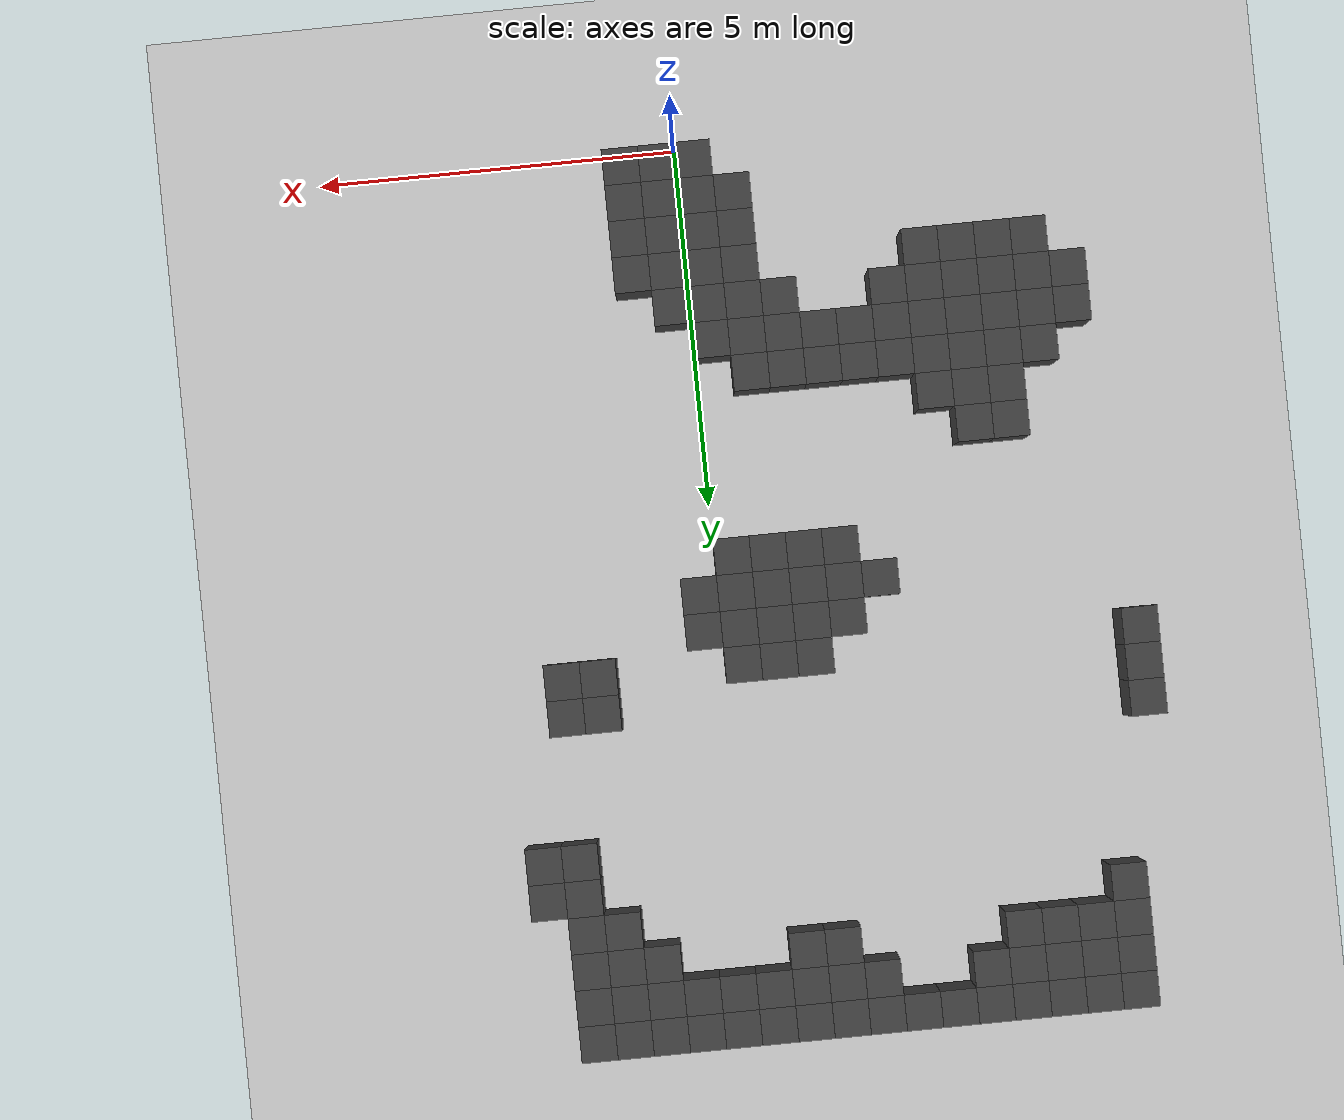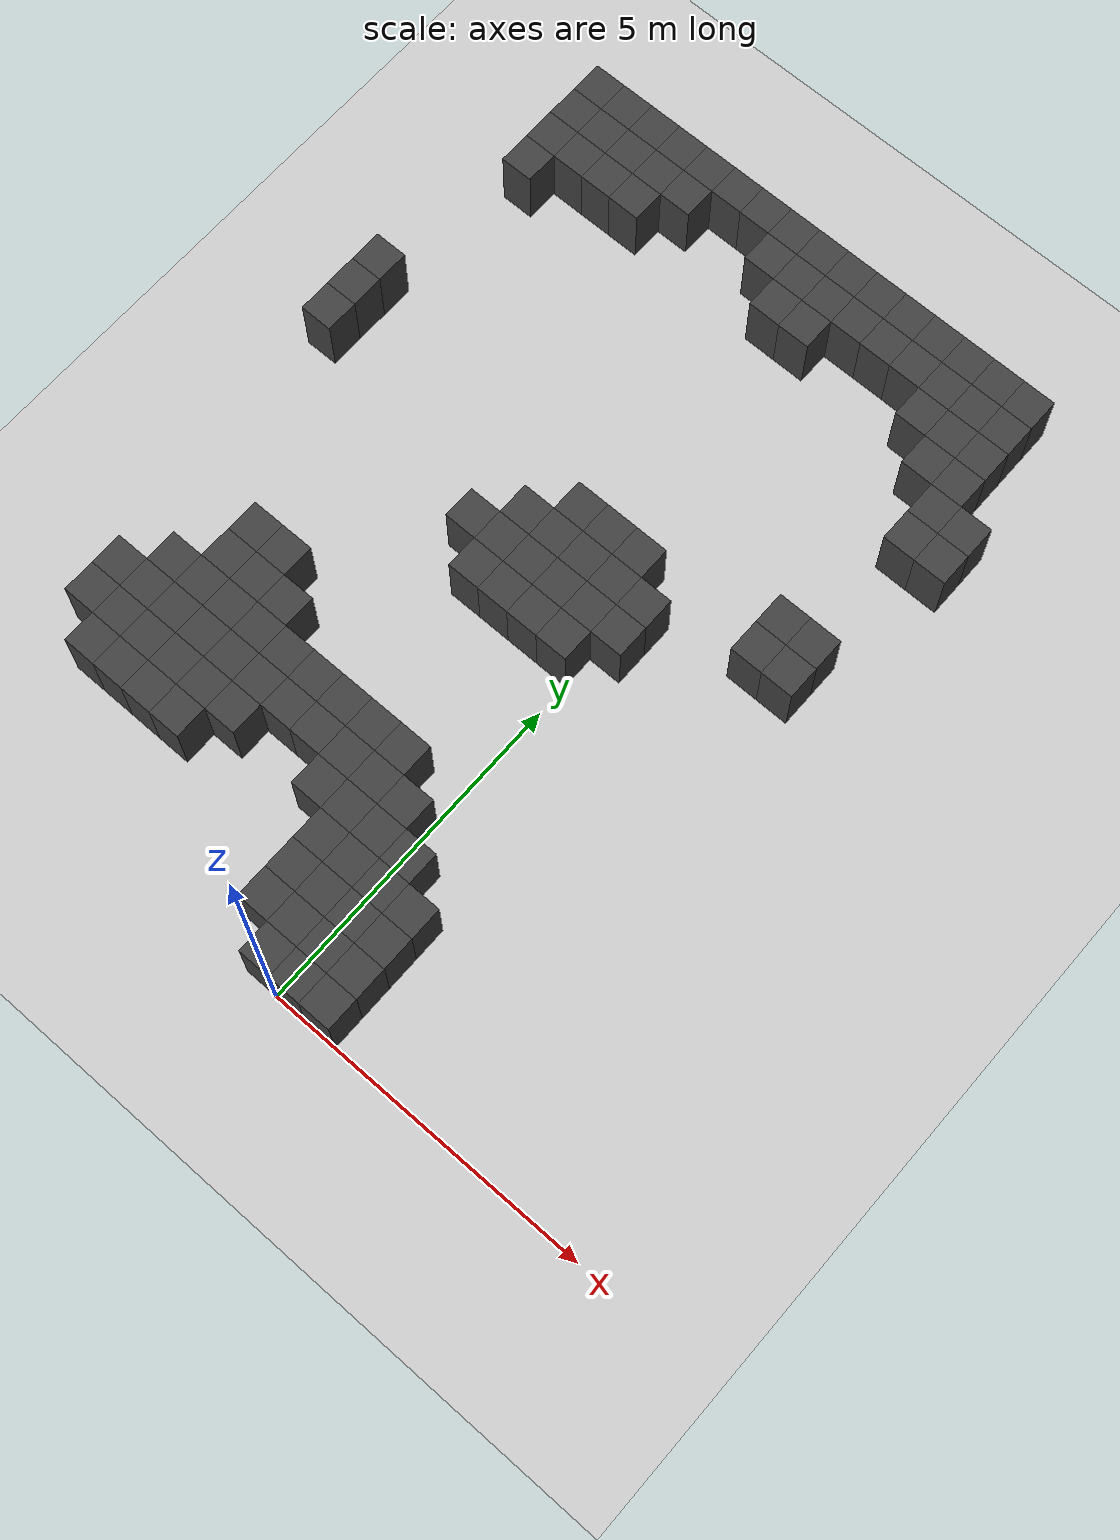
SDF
<sdf version="1.7">
 <world name="map_9082">
  <model name="ground_plane">
   <static>true</static>
   <link name="link">
    <collision name="collision">
     <geometry><plane><normal>0 0 1</normal><size>200 200</size></plane></geometry>
    </collision>
    <visual name="visual">
     <geometry><plane><normal>0 0 1</normal><size>200 200</size></plane></geometry>
     <material><ambient>0.8 0.8 0.8 1</ambient><diffuse>0.8 0.8 0.8 1</diffuse></material>
    </visual>
   </link>
  </model>
  <model name="maze_environment">
   <static>true</static>
   <link name="wall_14">
    <pose>-5.250 12.250 0.500 0 0 0</pose>
    <collision name="col"><geometry><box><size>0.5 0.5 1.0</size></box></geometry></collision>
    <visual name="vis">
     <geometry><box><size>0.5 0.5 1.0</size></box></geometry>
     <material><ambient>0.15 0.15 0.15 1</ambient><diffuse>0.25 0.25 0.25 1</diffuse></material>
    </visual>
   </link>
   <link name="wall_15">
    <pose>-4.750 12.250 0.500 0 0 0</pose>
    <collision name="col"><geometry><box><size>0.5 0.5 1.0</size></box></geometry></collision>
    <visual name="vis">
     <geometry><box><size>0.5 0.5 1.0</size></box></geometry>
     <material><ambient>0.15 0.15 0.15 1</ambient><diffuse>0.25 0.25 0.25 1</diffuse></material>
    </visual>
   </link>
   <link name="wall_16">
    <pose>-4.250 12.250 0.500 0 0 0</pose>
    <collision name="col"><geometry><box><size>0.5 0.5 1.0</size></box></geometry></collision>
    <visual name="vis">
     <geometry><box><size>0.5 0.5 1.0</size></box></geometry>
     <material><ambient>0.15 0.15 0.15 1</ambient><diffuse>0.25 0.25 0.25 1</diffuse></material>
    </visual>
   </link>
   <link name="wall_17">
    <pose>-3.750 12.250 0.500 0 0 0</pose>
    <collision name="col"><geometry><box><size>0.5 0.5 1.0</size></box></geometry></collision>
    <visual name="vis">
     <geometry><box><size>0.5 0.5 1.0</size></box></geometry>
     <material><ambient>0.15 0.15 0.15 1</ambient><diffuse>0.25 0.25 0.25 1</diffuse></material>
    </visual>
   </link>
   <link name="wall_18">
    <pose>-3.250 12.250 0.500 0 0 0</pose>
    <collision name="col"><geometry><box><size>0.5 0.5 1.0</size></box></geometry></collision>
    <visual name="vis">
     <geometry><box><size>0.5 0.5 1.0</size></box></geometry>
     <material><ambient>0.15 0.15 0.15 1</ambient><diffuse>0.25 0.25 0.25 1</diffuse></material>
    </visual>
   </link>
   <link name="wall_19">
    <pose>-2.750 12.250 0.500 0 0 0</pose>
    <collision name="col"><geometry><box><size>0.5 0.5 1.0</size></box></geometry></collision>
    <visual name="vis">
     <geometry><box><size>0.5 0.5 1.0</size></box></geometry>
     <material><ambient>0.15 0.15 0.15 1</ambient><diffuse>0.25 0.25 0.25 1</diffuse></material>
    </visual>
   </link>
   <link name="wall_20">
    <pose>-2.250 12.250 0.500 0 0 0</pose>
    <collision name="col"><geometry><box><size>0.5 0.5 1.0</size></box></geometry></collision>
    <visual name="vis">
     <geometry><box><size>0.5 0.5 1.0</size></box></geometry>
     <material><ambient>0.15 0.15 0.15 1</ambient><diffuse>0.25 0.25 0.25 1</diffuse></material>
    </visual>
   </link>
   <link name="wall_21">
    <pose>-1.750 12.250 0.500 0 0 0</pose>
    <collision name="col"><geometry><box><size>0.5 0.5 1.0</size></box></geometry></collision>
    <visual name="vis">
     <geometry><box><size>0.5 0.5 1.0</size></box></geometry>
     <material><ambient>0.15 0.15 0.15 1</ambient><diffuse>0.25 0.25 0.25 1</diffuse></material>
    </visual>
   </link>
   <link name="wall_22">
    <pose>-1.250 12.250 0.500 0 0 0</pose>
    <collision name="col"><geometry><box><size>0.5 0.5 1.0</size></box></geometry></collision>
    <visual name="vis">
     <geometry><box><size>0.5 0.5 1.0</size></box></geometry>
     <material><ambient>0.15 0.15 0.15 1</ambient><diffuse>0.25 0.25 0.25 1</diffuse></material>
    </visual>
   </link>
   <link name="wall_23">
    <pose>-0.750 12.250 0.500 0 0 0</pose>
    <collision name="col"><geometry><box><size>0.5 0.5 1.0</size></box></geometry></collision>
    <visual name="vis">
     <geometry><box><size>0.5 0.5 1.0</size></box></geometry>
     <material><ambient>0.15 0.15 0.15 1</ambient><diffuse>0.25 0.25 0.25 1</diffuse></material>
    </visual>
   </link>
   <link name="wall_24">
    <pose>-0.250 12.250 0.500 0 0 0</pose>
    <collision name="col"><geometry><box><size>0.5 0.5 1.0</size></box></geometry></collision>
    <visual name="vis">
     <geometry><box><size>0.5 0.5 1.0</size></box></geometry>
     <material><ambient>0.15 0.15 0.15 1</ambient><diffuse>0.25 0.25 0.25 1</diffuse></material>
    </visual>
   </link>
   <link name="wall_25">
    <pose>0.250 12.250 0.500 0 0 0</pose>
    <collision name="col"><geometry><box><size>0.5 0.5 1.0</size></box></geometry></collision>
    <visual name="vis">
     <geometry><box><size>0.5 0.5 1.0</size></box></geometry>
     <material><ambient>0.15 0.15 0.15 1</ambient><diffuse>0.25 0.25 0.25 1</diffuse></material>
    </visual>
   </link>
   <link name="wall_26">
    <pose>0.750 12.250 0.500 0 0 0</pose>
    <collision name="col"><geometry><box><size>0.5 0.5 1.0</size></box></geometry></collision>
    <visual name="vis">
     <geometry><box><size>0.5 0.5 1.0</size></box></geometry>
     <material><ambient>0.15 0.15 0.15 1</ambient><diffuse>0.25 0.25 0.25 1</diffuse></material>
    </visual>
   </link>
   <link name="wall_27">
    <pose>1.250 12.250 0.500 0 0 0</pose>
    <collision name="col"><geometry><box><size>0.5 0.5 1.0</size></box></geometry></collision>
    <visual name="vis">
     <geometry><box><size>0.5 0.5 1.0</size></box></geometry>
     <material><ambient>0.15 0.15 0.15 1</ambient><diffuse>0.25 0.25 0.25 1</diffuse></material>
    </visual>
   </link>
   <link name="wall_28">
    <pose>1.750 12.250 0.500 0 0 0</pose>
    <collision name="col"><geometry><box><size>0.5 0.5 1.0</size></box></geometry></collision>
    <visual name="vis">
     <geometry><box><size>0.5 0.5 1.0</size></box></geometry>
     <material><ambient>0.15 0.15 0.15 1</ambient><diffuse>0.25 0.25 0.25 1</diffuse></material>
    </visual>
   </link>
   <link name="wall_29">
    <pose>2.250 12.250 0.500 0 0 0</pose>
    <collision name="col"><geometry><box><size>0.5 0.5 1.0</size></box></geometry></collision>
    <visual name="vis">
     <geometry><box><size>0.5 0.5 1.0</size></box></geometry>
     <material><ambient>0.15 0.15 0.15 1</ambient><diffuse>0.25 0.25 0.25 1</diffuse></material>
    </visual>
   </link>
   <link name="wall_63">
    <pose>-5.250 11.750 0.500 0 0 0</pose>
    <collision name="col"><geometry><box><size>0.5 0.5 1.0</size></box></geometry></collision>
    <visual name="vis">
     <geometry><box><size>0.5 0.5 1.0</size></box></geometry>
     <material><ambient>0.15 0.15 0.15 1</ambient><diffuse>0.25 0.25 0.25 1</diffuse></material>
    </visual>
   </link>
   <link name="wall_64">
    <pose>-4.750 11.750 0.500 0 0 0</pose>
    <collision name="col"><geometry><box><size>0.5 0.5 1.0</size></box></geometry></collision>
    <visual name="vis">
     <geometry><box><size>0.5 0.5 1.0</size></box></geometry>
     <material><ambient>0.15 0.15 0.15 1</ambient><diffuse>0.25 0.25 0.25 1</diffuse></material>
    </visual>
   </link>
   <link name="wall_65">
    <pose>-4.250 11.750 0.500 0 0 0</pose>
    <collision name="col"><geometry><box><size>0.5 0.5 1.0</size></box></geometry></collision>
    <visual name="vis">
     <geometry><box><size>0.5 0.5 1.0</size></box></geometry>
     <material><ambient>0.15 0.15 0.15 1</ambient><diffuse>0.25 0.25 0.25 1</diffuse></material>
    </visual>
   </link>
   <link name="wall_66">
    <pose>-3.750 11.750 0.500 0 0 0</pose>
    <collision name="col"><geometry><box><size>0.5 0.5 1.0</size></box></geometry></collision>
    <visual name="vis">
     <geometry><box><size>0.5 0.5 1.0</size></box></geometry>
     <material><ambient>0.15 0.15 0.15 1</ambient><diffuse>0.25 0.25 0.25 1</diffuse></material>
    </visual>
   </link>
   <link name="wall_67">
    <pose>-3.250 11.750 0.500 0 0 0</pose>
    <collision name="col"><geometry><box><size>0.5 0.5 1.0</size></box></geometry></collision>
    <visual name="vis">
     <geometry><box><size>0.5 0.5 1.0</size></box></geometry>
     <material><ambient>0.15 0.15 0.15 1</ambient><diffuse>0.25 0.25 0.25 1</diffuse></material>
    </visual>
   </link>
   <link name="wall_68">
    <pose>-1.750 11.750 0.500 0 0 0</pose>
    <collision name="col"><geometry><box><size>0.5 0.5 1.0</size></box></geometry></collision>
    <visual name="vis">
     <geometry><box><size>0.5 0.5 1.0</size></box></geometry>
     <material><ambient>0.15 0.15 0.15 1</ambient><diffuse>0.25 0.25 0.25 1</diffuse></material>
    </visual>
   </link>
   <link name="wall_69">
    <pose>-1.250 11.750 0.500 0 0 0</pose>
    <collision name="col"><geometry><box><size>0.5 0.5 1.0</size></box></geometry></collision>
    <visual name="vis">
     <geometry><box><size>0.5 0.5 1.0</size></box></geometry>
     <material><ambient>0.15 0.15 0.15 1</ambient><diffuse>0.25 0.25 0.25 1</diffuse></material>
    </visual>
   </link>
   <link name="wall_70">
    <pose>-0.750 11.750 0.500 0 0 0</pose>
    <collision name="col"><geometry><box><size>0.5 0.5 1.0</size></box></geometry></collision>
    <visual name="vis">
     <geometry><box><size>0.5 0.5 1.0</size></box></geometry>
     <material><ambient>0.15 0.15 0.15 1</ambient><diffuse>0.25 0.25 0.25 1</diffuse></material>
    </visual>
   </link>
   <link name="wall_71">
    <pose>-0.250 11.750 0.500 0 0 0</pose>
    <collision name="col"><geometry><box><size>0.5 0.5 1.0</size></box></geometry></collision>
    <visual name="vis">
     <geometry><box><size>0.5 0.5 1.0</size></box></geometry>
     <material><ambient>0.15 0.15 0.15 1</ambient><diffuse>0.25 0.25 0.25 1</diffuse></material>
    </visual>
   </link>
   <link name="wall_72">
    <pose>0.250 11.750 0.500 0 0 0</pose>
    <collision name="col"><geometry><box><size>0.5 0.5 1.0</size></box></geometry></collision>
    <visual name="vis">
     <geometry><box><size>0.5 0.5 1.0</size></box></geometry>
     <material><ambient>0.15 0.15 0.15 1</ambient><diffuse>0.25 0.25 0.25 1</diffuse></material>
    </visual>
   </link>
   <link name="wall_73">
    <pose>0.750 11.750 0.500 0 0 0</pose>
    <collision name="col"><geometry><box><size>0.5 0.5 1.0</size></box></geometry></collision>
    <visual name="vis">
     <geometry><box><size>0.5 0.5 1.0</size></box></geometry>
     <material><ambient>0.15 0.15 0.15 1</ambient><diffuse>0.25 0.25 0.25 1</diffuse></material>
    </visual>
   </link>
   <link name="wall_74">
    <pose>1.250 11.750 0.500 0 0 0</pose>
    <collision name="col"><geometry><box><size>0.5 0.5 1.0</size></box></geometry></collision>
    <visual name="vis">
     <geometry><box><size>0.5 0.5 1.0</size></box></geometry>
     <material><ambient>0.15 0.15 0.15 1</ambient><diffuse>0.25 0.25 0.25 1</diffuse></material>
    </visual>
   </link>
   <link name="wall_75">
    <pose>1.750 11.750 0.500 0 0 0</pose>
    <collision name="col"><geometry><box><size>0.5 0.5 1.0</size></box></geometry></collision>
    <visual name="vis">
     <geometry><box><size>0.5 0.5 1.0</size></box></geometry>
     <material><ambient>0.15 0.15 0.15 1</ambient><diffuse>0.25 0.25 0.25 1</diffuse></material>
    </visual>
   </link>
   <link name="wall_76">
    <pose>2.250 11.750 0.500 0 0 0</pose>
    <collision name="col"><geometry><box><size>0.5 0.5 1.0</size></box></geometry></collision>
    <visual name="vis">
     <geometry><box><size>0.5 0.5 1.0</size></box></geometry>
     <material><ambient>0.15 0.15 0.15 1</ambient><diffuse>0.25 0.25 0.25 1</diffuse></material>
    </visual>
   </link>
   <link name="wall_109">
    <pose>-5.250 11.250 0.500 0 0 0</pose>
    <collision name="col"><geometry><box><size>0.5 0.5 1.0</size></box></geometry></collision>
    <visual name="vis">
     <geometry><box><size>0.5 0.5 1.0</size></box></geometry>
     <material><ambient>0.15 0.15 0.15 1</ambient><diffuse>0.25 0.25 0.25 1</diffuse></material>
    </visual>
   </link>
   <link name="wall_110">
    <pose>-4.750 11.250 0.500 0 0 0</pose>
    <collision name="col"><geometry><box><size>0.5 0.5 1.0</size></box></geometry></collision>
    <visual name="vis">
     <geometry><box><size>0.5 0.5 1.0</size></box></geometry>
     <material><ambient>0.15 0.15 0.15 1</ambient><diffuse>0.25 0.25 0.25 1</diffuse></material>
    </visual>
   </link>
   <link name="wall_111">
    <pose>-4.250 11.250 0.500 0 0 0</pose>
    <collision name="col"><geometry><box><size>0.5 0.5 1.0</size></box></geometry></collision>
    <visual name="vis">
     <geometry><box><size>0.5 0.5 1.0</size></box></geometry>
     <material><ambient>0.15 0.15 0.15 1</ambient><diffuse>0.25 0.25 0.25 1</diffuse></material>
    </visual>
   </link>
   <link name="wall_112">
    <pose>-3.750 11.250 0.500 0 0 0</pose>
    <collision name="col"><geometry><box><size>0.5 0.5 1.0</size></box></geometry></collision>
    <visual name="vis">
     <geometry><box><size>0.5 0.5 1.0</size></box></geometry>
     <material><ambient>0.15 0.15 0.15 1</ambient><diffuse>0.25 0.25 0.25 1</diffuse></material>
    </visual>
   </link>
   <link name="wall_113">
    <pose>-1.250 11.250 0.500 0 0 0</pose>
    <collision name="col"><geometry><box><size>0.5 0.5 1.0</size></box></geometry></collision>
    <visual name="vis">
     <geometry><box><size>0.5 0.5 1.0</size></box></geometry>
     <material><ambient>0.15 0.15 0.15 1</ambient><diffuse>0.25 0.25 0.25 1</diffuse></material>
    </visual>
   </link>
   <link name="wall_114">
    <pose>-0.750 11.250 0.500 0 0 0</pose>
    <collision name="col"><geometry><box><size>0.5 0.5 1.0</size></box></geometry></collision>
    <visual name="vis">
     <geometry><box><size>0.5 0.5 1.0</size></box></geometry>
     <material><ambient>0.15 0.15 0.15 1</ambient><diffuse>0.25 0.25 0.25 1</diffuse></material>
    </visual>
   </link>
   <link name="wall_115">
    <pose>1.250 11.250 0.500 0 0 0</pose>
    <collision name="col"><geometry><box><size>0.5 0.5 1.0</size></box></geometry></collision>
    <visual name="vis">
     <geometry><box><size>0.5 0.5 1.0</size></box></geometry>
     <material><ambient>0.15 0.15 0.15 1</ambient><diffuse>0.25 0.25 0.25 1</diffuse></material>
    </visual>
   </link>
   <link name="wall_116">
    <pose>1.750 11.250 0.500 0 0 0</pose>
    <collision name="col"><geometry><box><size>0.5 0.5 1.0</size></box></geometry></collision>
    <visual name="vis">
     <geometry><box><size>0.5 0.5 1.0</size></box></geometry>
     <material><ambient>0.15 0.15 0.15 1</ambient><diffuse>0.25 0.25 0.25 1</diffuse></material>
    </visual>
   </link>
   <link name="wall_117">
    <pose>2.250 11.250 0.500 0 0 0</pose>
    <collision name="col"><geometry><box><size>0.5 0.5 1.0</size></box></geometry></collision>
    <visual name="vis">
     <geometry><box><size>0.5 0.5 1.0</size></box></geometry>
     <material><ambient>0.15 0.15 0.15 1</ambient><diffuse>0.25 0.25 0.25 1</diffuse></material>
    </visual>
   </link>
   <link name="wall_142">
    <pose>-5.250 10.750 0.500 0 0 0</pose>
    <collision name="col"><geometry><box><size>0.5 0.5 1.0</size></box></geometry></collision>
    <visual name="vis">
     <geometry><box><size>0.5 0.5 1.0</size></box></geometry>
     <material><ambient>0.15 0.15 0.15 1</ambient><diffuse>0.25 0.25 0.25 1</diffuse></material>
    </visual>
   </link>
   <link name="wall_143">
    <pose>1.750 10.750 0.500 0 0 0</pose>
    <collision name="col"><geometry><box><size>0.5 0.5 1.0</size></box></geometry></collision>
    <visual name="vis">
     <geometry><box><size>0.5 0.5 1.0</size></box></geometry>
     <material><ambient>0.15 0.15 0.15 1</ambient><diffuse>0.25 0.25 0.25 1</diffuse></material>
    </visual>
   </link>
   <link name="wall_144">
    <pose>2.250 10.750 0.500 0 0 0</pose>
    <collision name="col"><geometry><box><size>0.5 0.5 1.0</size></box></geometry></collision>
    <visual name="vis">
     <geometry><box><size>0.5 0.5 1.0</size></box></geometry>
     <material><ambient>0.15 0.15 0.15 1</ambient><diffuse>0.25 0.25 0.25 1</diffuse></material>
    </visual>
   </link>
   <link name="wall_165">
    <pose>2.250 10.250 0.500 0 0 0</pose>
    <collision name="col"><geometry><box><size>0.5 0.5 1.0</size></box></geometry></collision>
    <visual name="vis">
     <geometry><box><size>0.5 0.5 1.0</size></box></geometry>
     <material><ambient>0.15 0.15 0.15 1</ambient><diffuse>0.25 0.25 0.25 1</diffuse></material>
    </visual>
   </link>
   <link name="wall_166">
    <pose>2.750 10.250 0.500 0 0 0</pose>
    <collision name="col"><geometry><box><size>0.5 0.5 1.0</size></box></geometry></collision>
    <visual name="vis">
     <geometry><box><size>0.5 0.5 1.0</size></box></geometry>
     <material><ambient>0.15 0.15 0.15 1</ambient><diffuse>0.25 0.25 0.25 1</diffuse></material>
    </visual>
   </link>
   <link name="wall_184">
    <pose>2.250 9.750 0.500 0 0 0</pose>
    <collision name="col"><geometry><box><size>0.5 0.5 1.0</size></box></geometry></collision>
    <visual name="vis">
     <geometry><box><size>0.5 0.5 1.0</size></box></geometry>
     <material><ambient>0.15 0.15 0.15 1</ambient><diffuse>0.25 0.25 0.25 1</diffuse></material>
    </visual>
   </link>
   <link name="wall_185">
    <pose>2.750 9.750 0.500 0 0 0</pose>
    <collision name="col"><geometry><box><size>0.5 0.5 1.0</size></box></geometry></collision>
    <visual name="vis">
     <geometry><box><size>0.5 0.5 1.0</size></box></geometry>
     <material><ambient>0.15 0.15 0.15 1</ambient><diffuse>0.25 0.25 0.25 1</diffuse></material>
    </visual>
   </link>
   <link name="wall_225">
    <pose>-5.750 8.250 0.500 0 0 0</pose>
    <collision name="col"><geometry><box><size>0.5 0.5 1.0</size></box></geometry></collision>
    <visual name="vis">
     <geometry><box><size>0.5 0.5 1.0</size></box></geometry>
     <material><ambient>0.15 0.15 0.15 1</ambient><diffuse>0.25 0.25 0.25 1</diffuse></material>
    </visual>
   </link>
   <link name="wall_238">
    <pose>-5.750 7.750 0.500 0 0 0</pose>
    <collision name="col"><geometry><box><size>0.5 0.5 1.0</size></box></geometry></collision>
    <visual name="vis">
     <geometry><box><size>0.5 0.5 1.0</size></box></geometry>
     <material><ambient>0.15 0.15 0.15 1</ambient><diffuse>0.25 0.25 0.25 1</diffuse></material>
    </visual>
   </link>
   <link name="wall_239">
    <pose>1.750 7.750 0.500 0 0 0</pose>
    <collision name="col"><geometry><box><size>0.5 0.5 1.0</size></box></geometry></collision>
    <visual name="vis">
     <geometry><box><size>0.5 0.5 1.0</size></box></geometry>
     <material><ambient>0.15 0.15 0.15 1</ambient><diffuse>0.25 0.25 0.25 1</diffuse></material>
    </visual>
   </link>
   <link name="wall_240">
    <pose>2.250 7.750 0.500 0 0 0</pose>
    <collision name="col"><geometry><box><size>0.5 0.5 1.0</size></box></geometry></collision>
    <visual name="vis">
     <geometry><box><size>0.5 0.5 1.0</size></box></geometry>
     <material><ambient>0.15 0.15 0.15 1</ambient><diffuse>0.25 0.25 0.25 1</diffuse></material>
    </visual>
   </link>
   <link name="wall_255">
    <pose>-5.750 7.250 0.500 0 0 0</pose>
    <collision name="col"><geometry><box><size>0.5 0.5 1.0</size></box></geometry></collision>
    <visual name="vis">
     <geometry><box><size>0.5 0.5 1.0</size></box></geometry>
     <material><ambient>0.15 0.15 0.15 1</ambient><diffuse>0.25 0.25 0.25 1</diffuse></material>
    </visual>
   </link>
   <link name="wall_256">
    <pose>-1.250 7.250 0.500 0 0 0</pose>
    <collision name="col"><geometry><box><size>0.5 0.5 1.0</size></box></geometry></collision>
    <visual name="vis">
     <geometry><box><size>0.5 0.5 1.0</size></box></geometry>
     <material><ambient>0.15 0.15 0.15 1</ambient><diffuse>0.25 0.25 0.25 1</diffuse></material>
    </visual>
   </link>
   <link name="wall_257">
    <pose>-0.750 7.250 0.500 0 0 0</pose>
    <collision name="col"><geometry><box><size>0.5 0.5 1.0</size></box></geometry></collision>
    <visual name="vis">
     <geometry><box><size>0.5 0.5 1.0</size></box></geometry>
     <material><ambient>0.15 0.15 0.15 1</ambient><diffuse>0.25 0.25 0.25 1</diffuse></material>
    </visual>
   </link>
   <link name="wall_258">
    <pose>-0.250 7.250 0.500 0 0 0</pose>
    <collision name="col"><geometry><box><size>0.5 0.5 1.0</size></box></geometry></collision>
    <visual name="vis">
     <geometry><box><size>0.5 0.5 1.0</size></box></geometry>
     <material><ambient>0.15 0.15 0.15 1</ambient><diffuse>0.25 0.25 0.25 1</diffuse></material>
    </visual>
   </link>
   <link name="wall_259">
    <pose>1.750 7.250 0.500 0 0 0</pose>
    <collision name="col"><geometry><box><size>0.5 0.5 1.0</size></box></geometry></collision>
    <visual name="vis">
     <geometry><box><size>0.5 0.5 1.0</size></box></geometry>
     <material><ambient>0.15 0.15 0.15 1</ambient><diffuse>0.25 0.25 0.25 1</diffuse></material>
    </visual>
   </link>
   <link name="wall_260">
    <pose>2.250 7.250 0.500 0 0 0</pose>
    <collision name="col"><geometry><box><size>0.5 0.5 1.0</size></box></geometry></collision>
    <visual name="vis">
     <geometry><box><size>0.5 0.5 1.0</size></box></geometry>
     <material><ambient>0.15 0.15 0.15 1</ambient><diffuse>0.25 0.25 0.25 1</diffuse></material>
    </visual>
   </link>
   <link name="wall_273">
    <pose>-1.750 6.750 0.500 0 0 0</pose>
    <collision name="col"><geometry><box><size>0.5 0.5 1.0</size></box></geometry></collision>
    <visual name="vis">
     <geometry><box><size>0.5 0.5 1.0</size></box></geometry>
     <material><ambient>0.15 0.15 0.15 1</ambient><diffuse>0.25 0.25 0.25 1</diffuse></material>
    </visual>
   </link>
   <link name="wall_274">
    <pose>-1.250 6.750 0.500 0 0 0</pose>
    <collision name="col"><geometry><box><size>0.5 0.5 1.0</size></box></geometry></collision>
    <visual name="vis">
     <geometry><box><size>0.5 0.5 1.0</size></box></geometry>
     <material><ambient>0.15 0.15 0.15 1</ambient><diffuse>0.25 0.25 0.25 1</diffuse></material>
    </visual>
   </link>
   <link name="wall_275">
    <pose>-0.750 6.750 0.500 0 0 0</pose>
    <collision name="col"><geometry><box><size>0.5 0.5 1.0</size></box></geometry></collision>
    <visual name="vis">
     <geometry><box><size>0.5 0.5 1.0</size></box></geometry>
     <material><ambient>0.15 0.15 0.15 1</ambient><diffuse>0.25 0.25 0.25 1</diffuse></material>
    </visual>
   </link>
   <link name="wall_276">
    <pose>-0.250 6.750 0.500 0 0 0</pose>
    <collision name="col"><geometry><box><size>0.5 0.5 1.0</size></box></geometry></collision>
    <visual name="vis">
     <geometry><box><size>0.5 0.5 1.0</size></box></geometry>
     <material><ambient>0.15 0.15 0.15 1</ambient><diffuse>0.25 0.25 0.25 1</diffuse></material>
    </visual>
   </link>
   <link name="wall_277">
    <pose>0.250 6.750 0.500 0 0 0</pose>
    <collision name="col"><geometry><box><size>0.5 0.5 1.0</size></box></geometry></collision>
    <visual name="vis">
     <geometry><box><size>0.5 0.5 1.0</size></box></geometry>
     <material><ambient>0.15 0.15 0.15 1</ambient><diffuse>0.25 0.25 0.25 1</diffuse></material>
    </visual>
   </link>
   <link name="wall_289">
    <pose>-2.250 6.250 0.500 0 0 0</pose>
    <collision name="col"><geometry><box><size>0.5 0.5 1.0</size></box></geometry></collision>
    <visual name="vis">
     <geometry><box><size>0.5 0.5 1.0</size></box></geometry>
     <material><ambient>0.15 0.15 0.15 1</ambient><diffuse>0.25 0.25 0.25 1</diffuse></material>
    </visual>
   </link>
   <link name="wall_290">
    <pose>-1.750 6.250 0.500 0 0 0</pose>
    <collision name="col"><geometry><box><size>0.5 0.5 1.0</size></box></geometry></collision>
    <visual name="vis">
     <geometry><box><size>0.5 0.5 1.0</size></box></geometry>
     <material><ambient>0.15 0.15 0.15 1</ambient><diffuse>0.25 0.25 0.25 1</diffuse></material>
    </visual>
   </link>
   <link name="wall_291">
    <pose>-1.250 6.250 0.500 0 0 0</pose>
    <collision name="col"><geometry><box><size>0.5 0.5 1.0</size></box></geometry></collision>
    <visual name="vis">
     <geometry><box><size>0.5 0.5 1.0</size></box></geometry>
     <material><ambient>0.15 0.15 0.15 1</ambient><diffuse>0.25 0.25 0.25 1</diffuse></material>
    </visual>
   </link>
   <link name="wall_292">
    <pose>-0.750 6.250 0.500 0 0 0</pose>
    <collision name="col"><geometry><box><size>0.5 0.5 1.0</size></box></geometry></collision>
    <visual name="vis">
     <geometry><box><size>0.5 0.5 1.0</size></box></geometry>
     <material><ambient>0.15 0.15 0.15 1</ambient><diffuse>0.25 0.25 0.25 1</diffuse></material>
    </visual>
   </link>
   <link name="wall_293">
    <pose>-0.250 6.250 0.500 0 0 0</pose>
    <collision name="col"><geometry><box><size>0.5 0.5 1.0</size></box></geometry></collision>
    <visual name="vis">
     <geometry><box><size>0.5 0.5 1.0</size></box></geometry>
     <material><ambient>0.15 0.15 0.15 1</ambient><diffuse>0.25 0.25 0.25 1</diffuse></material>
    </visual>
   </link>
   <link name="wall_294">
    <pose>0.250 6.250 0.500 0 0 0</pose>
    <collision name="col"><geometry><box><size>0.5 0.5 1.0</size></box></geometry></collision>
    <visual name="vis">
     <geometry><box><size>0.5 0.5 1.0</size></box></geometry>
     <material><ambient>0.15 0.15 0.15 1</ambient><diffuse>0.25 0.25 0.25 1</diffuse></material>
    </visual>
   </link>
   <link name="wall_299">
    <pose>-1.750 5.750 0.500 0 0 0</pose>
    <collision name="col"><geometry><box><size>0.5 0.5 1.0</size></box></geometry></collision>
    <visual name="vis">
     <geometry><box><size>0.5 0.5 1.0</size></box></geometry>
     <material><ambient>0.15 0.15 0.15 1</ambient><diffuse>0.25 0.25 0.25 1</diffuse></material>
    </visual>
   </link>
   <link name="wall_300">
    <pose>-1.250 5.750 0.500 0 0 0</pose>
    <collision name="col"><geometry><box><size>0.5 0.5 1.0</size></box></geometry></collision>
    <visual name="vis">
     <geometry><box><size>0.5 0.5 1.0</size></box></geometry>
     <material><ambient>0.15 0.15 0.15 1</ambient><diffuse>0.25 0.25 0.25 1</diffuse></material>
    </visual>
   </link>
   <link name="wall_301">
    <pose>-0.750 5.750 0.500 0 0 0</pose>
    <collision name="col"><geometry><box><size>0.5 0.5 1.0</size></box></geometry></collision>
    <visual name="vis">
     <geometry><box><size>0.5 0.5 1.0</size></box></geometry>
     <material><ambient>0.15 0.15 0.15 1</ambient><diffuse>0.25 0.25 0.25 1</diffuse></material>
    </visual>
   </link>
   <link name="wall_302">
    <pose>-0.250 5.750 0.500 0 0 0</pose>
    <collision name="col"><geometry><box><size>0.5 0.5 1.0</size></box></geometry></collision>
    <visual name="vis">
     <geometry><box><size>0.5 0.5 1.0</size></box></geometry>
     <material><ambient>0.15 0.15 0.15 1</ambient><diffuse>0.25 0.25 0.25 1</diffuse></material>
    </visual>
   </link>
   <link name="wall_313">
    <pose>-4.250 4.250 0.500 0 0 0</pose>
    <collision name="col"><geometry><box><size>0.5 0.5 1.0</size></box></geometry></collision>
    <visual name="vis">
     <geometry><box><size>0.5 0.5 1.0</size></box></geometry>
     <material><ambient>0.15 0.15 0.15 1</ambient><diffuse>0.25 0.25 0.25 1</diffuse></material>
    </visual>
   </link>
   <link name="wall_314">
    <pose>-3.750 4.250 0.500 0 0 0</pose>
    <collision name="col"><geometry><box><size>0.5 0.5 1.0</size></box></geometry></collision>
    <visual name="vis">
     <geometry><box><size>0.5 0.5 1.0</size></box></geometry>
     <material><ambient>0.15 0.15 0.15 1</ambient><diffuse>0.25 0.25 0.25 1</diffuse></material>
    </visual>
   </link>
   <link name="wall_322">
    <pose>-4.250 3.750 0.500 0 0 0</pose>
    <collision name="col"><geometry><box><size>0.5 0.5 1.0</size></box></geometry></collision>
    <visual name="vis">
     <geometry><box><size>0.5 0.5 1.0</size></box></geometry>
     <material><ambient>0.15 0.15 0.15 1</ambient><diffuse>0.25 0.25 0.25 1</diffuse></material>
    </visual>
   </link>
   <link name="wall_323">
    <pose>-3.750 3.750 0.500 0 0 0</pose>
    <collision name="col"><geometry><box><size>0.5 0.5 1.0</size></box></geometry></collision>
    <visual name="vis">
     <geometry><box><size>0.5 0.5 1.0</size></box></geometry>
     <material><ambient>0.15 0.15 0.15 1</ambient><diffuse>0.25 0.25 0.25 1</diffuse></material>
    </visual>
   </link>
   <link name="wall_324">
    <pose>-3.250 3.750 0.500 0 0 0</pose>
    <collision name="col"><geometry><box><size>0.5 0.5 1.0</size></box></geometry></collision>
    <visual name="vis">
     <geometry><box><size>0.5 0.5 1.0</size></box></geometry>
     <material><ambient>0.15 0.15 0.15 1</ambient><diffuse>0.25 0.25 0.25 1</diffuse></material>
    </visual>
   </link>
   <link name="wall_333">
    <pose>-4.750 3.250 0.500 0 0 0</pose>
    <collision name="col"><geometry><box><size>0.5 0.5 1.0</size></box></geometry></collision>
    <visual name="vis">
     <geometry><box><size>0.5 0.5 1.0</size></box></geometry>
     <material><ambient>0.15 0.15 0.15 1</ambient><diffuse>0.25 0.25 0.25 1</diffuse></material>
    </visual>
   </link>
   <link name="wall_334">
    <pose>-4.250 3.250 0.500 0 0 0</pose>
    <collision name="col"><geometry><box><size>0.5 0.5 1.0</size></box></geometry></collision>
    <visual name="vis">
     <geometry><box><size>0.5 0.5 1.0</size></box></geometry>
     <material><ambient>0.15 0.15 0.15 1</ambient><diffuse>0.25 0.25 0.25 1</diffuse></material>
    </visual>
   </link>
   <link name="wall_335">
    <pose>-3.750 3.250 0.500 0 0 0</pose>
    <collision name="col"><geometry><box><size>0.5 0.5 1.0</size></box></geometry></collision>
    <visual name="vis">
     <geometry><box><size>0.5 0.5 1.0</size></box></geometry>
     <material><ambient>0.15 0.15 0.15 1</ambient><diffuse>0.25 0.25 0.25 1</diffuse></material>
    </visual>
   </link>
   <link name="wall_336">
    <pose>-3.250 3.250 0.500 0 0 0</pose>
    <collision name="col"><geometry><box><size>0.5 0.5 1.0</size></box></geometry></collision>
    <visual name="vis">
     <geometry><box><size>0.5 0.5 1.0</size></box></geometry>
     <material><ambient>0.15 0.15 0.15 1</ambient><diffuse>0.25 0.25 0.25 1</diffuse></material>
    </visual>
   </link>
   <link name="wall_337">
    <pose>-2.750 3.250 0.500 0 0 0</pose>
    <collision name="col"><geometry><box><size>0.5 0.5 1.0</size></box></geometry></collision>
    <visual name="vis">
     <geometry><box><size>0.5 0.5 1.0</size></box></geometry>
     <material><ambient>0.15 0.15 0.15 1</ambient><diffuse>0.25 0.25 0.25 1</diffuse></material>
    </visual>
   </link>
   <link name="wall_338">
    <pose>-2.250 3.250 0.500 0 0 0</pose>
    <collision name="col"><geometry><box><size>0.5 0.5 1.0</size></box></geometry></collision>
    <visual name="vis">
     <geometry><box><size>0.5 0.5 1.0</size></box></geometry>
     <material><ambient>0.15 0.15 0.15 1</ambient><diffuse>0.25 0.25 0.25 1</diffuse></material>
    </visual>
   </link>
   <link name="wall_339">
    <pose>-1.750 3.250 0.500 0 0 0</pose>
    <collision name="col"><geometry><box><size>0.5 0.5 1.0</size></box></geometry></collision>
    <visual name="vis">
     <geometry><box><size>0.5 0.5 1.0</size></box></geometry>
     <material><ambient>0.15 0.15 0.15 1</ambient><diffuse>0.25 0.25 0.25 1</diffuse></material>
    </visual>
   </link>
   <link name="wall_340">
    <pose>-1.250 3.250 0.500 0 0 0</pose>
    <collision name="col"><geometry><box><size>0.5 0.5 1.0</size></box></geometry></collision>
    <visual name="vis">
     <geometry><box><size>0.5 0.5 1.0</size></box></geometry>
     <material><ambient>0.15 0.15 0.15 1</ambient><diffuse>0.25 0.25 0.25 1</diffuse></material>
    </visual>
   </link>
   <link name="wall_341">
    <pose>-0.750 3.250 0.500 0 0 0</pose>
    <collision name="col"><geometry><box><size>0.5 0.5 1.0</size></box></geometry></collision>
    <visual name="vis">
     <geometry><box><size>0.5 0.5 1.0</size></box></geometry>
     <material><ambient>0.15 0.15 0.15 1</ambient><diffuse>0.25 0.25 0.25 1</diffuse></material>
    </visual>
   </link>
   <link name="wall_351">
    <pose>-5.250 2.750 0.500 0 0 0</pose>
    <collision name="col"><geometry><box><size>0.5 0.5 1.0</size></box></geometry></collision>
    <visual name="vis">
     <geometry><box><size>0.5 0.5 1.0</size></box></geometry>
     <material><ambient>0.15 0.15 0.15 1</ambient><diffuse>0.25 0.25 0.25 1</diffuse></material>
    </visual>
   </link>
   <link name="wall_352">
    <pose>-4.750 2.750 0.500 0 0 0</pose>
    <collision name="col"><geometry><box><size>0.5 0.5 1.0</size></box></geometry></collision>
    <visual name="vis">
     <geometry><box><size>0.5 0.5 1.0</size></box></geometry>
     <material><ambient>0.15 0.15 0.15 1</ambient><diffuse>0.25 0.25 0.25 1</diffuse></material>
    </visual>
   </link>
   <link name="wall_353">
    <pose>-4.250 2.750 0.500 0 0 0</pose>
    <collision name="col"><geometry><box><size>0.5 0.5 1.0</size></box></geometry></collision>
    <visual name="vis">
     <geometry><box><size>0.5 0.5 1.0</size></box></geometry>
     <material><ambient>0.15 0.15 0.15 1</ambient><diffuse>0.25 0.25 0.25 1</diffuse></material>
    </visual>
   </link>
   <link name="wall_354">
    <pose>-3.750 2.750 0.500 0 0 0</pose>
    <collision name="col"><geometry><box><size>0.5 0.5 1.0</size></box></geometry></collision>
    <visual name="vis">
     <geometry><box><size>0.5 0.5 1.0</size></box></geometry>
     <material><ambient>0.15 0.15 0.15 1</ambient><diffuse>0.25 0.25 0.25 1</diffuse></material>
    </visual>
   </link>
   <link name="wall_355">
    <pose>-3.250 2.750 0.500 0 0 0</pose>
    <collision name="col"><geometry><box><size>0.5 0.5 1.0</size></box></geometry></collision>
    <visual name="vis">
     <geometry><box><size>0.5 0.5 1.0</size></box></geometry>
     <material><ambient>0.15 0.15 0.15 1</ambient><diffuse>0.25 0.25 0.25 1</diffuse></material>
    </visual>
   </link>
   <link name="wall_356">
    <pose>-2.750 2.750 0.500 0 0 0</pose>
    <collision name="col"><geometry><box><size>0.5 0.5 1.0</size></box></geometry></collision>
    <visual name="vis">
     <geometry><box><size>0.5 0.5 1.0</size></box></geometry>
     <material><ambient>0.15 0.15 0.15 1</ambient><diffuse>0.25 0.25 0.25 1</diffuse></material>
    </visual>
   </link>
   <link name="wall_357">
    <pose>-2.250 2.750 0.500 0 0 0</pose>
    <collision name="col"><geometry><box><size>0.5 0.5 1.0</size></box></geometry></collision>
    <visual name="vis">
     <geometry><box><size>0.5 0.5 1.0</size></box></geometry>
     <material><ambient>0.15 0.15 0.15 1</ambient><diffuse>0.25 0.25 0.25 1</diffuse></material>
    </visual>
   </link>
   <link name="wall_358">
    <pose>-1.750 2.750 0.500 0 0 0</pose>
    <collision name="col"><geometry><box><size>0.5 0.5 1.0</size></box></geometry></collision>
    <visual name="vis">
     <geometry><box><size>0.5 0.5 1.0</size></box></geometry>
     <material><ambient>0.15 0.15 0.15 1</ambient><diffuse>0.25 0.25 0.25 1</diffuse></material>
    </visual>
   </link>
   <link name="wall_359">
    <pose>-1.250 2.750 0.500 0 0 0</pose>
    <collision name="col"><geometry><box><size>0.5 0.5 1.0</size></box></geometry></collision>
    <visual name="vis">
     <geometry><box><size>0.5 0.5 1.0</size></box></geometry>
     <material><ambient>0.15 0.15 0.15 1</ambient><diffuse>0.25 0.25 0.25 1</diffuse></material>
    </visual>
   </link>
   <link name="wall_360">
    <pose>-0.750 2.750 0.500 0 0 0</pose>
    <collision name="col"><geometry><box><size>0.5 0.5 1.0</size></box></geometry></collision>
    <visual name="vis">
     <geometry><box><size>0.5 0.5 1.0</size></box></geometry>
     <material><ambient>0.15 0.15 0.15 1</ambient><diffuse>0.25 0.25 0.25 1</diffuse></material>
    </visual>
   </link>
   <link name="wall_361">
    <pose>-0.250 2.750 0.500 0 0 0</pose>
    <collision name="col"><geometry><box><size>0.5 0.5 1.0</size></box></geometry></collision>
    <visual name="vis">
     <geometry><box><size>0.5 0.5 1.0</size></box></geometry>
     <material><ambient>0.15 0.15 0.15 1</ambient><diffuse>0.25 0.25 0.25 1</diffuse></material>
    </visual>
   </link>
   <link name="wall_368">
    <pose>-5.250 2.250 0.500 0 0 0</pose>
    <collision name="col"><geometry><box><size>0.5 0.5 1.0</size></box></geometry></collision>
    <visual name="vis">
     <geometry><box><size>0.5 0.5 1.0</size></box></geometry>
     <material><ambient>0.15 0.15 0.15 1</ambient><diffuse>0.25 0.25 0.25 1</diffuse></material>
    </visual>
   </link>
   <link name="wall_369">
    <pose>-4.750 2.250 0.500 0 0 0</pose>
    <collision name="col"><geometry><box><size>0.5 0.5 1.0</size></box></geometry></collision>
    <visual name="vis">
     <geometry><box><size>0.5 0.5 1.0</size></box></geometry>
     <material><ambient>0.15 0.15 0.15 1</ambient><diffuse>0.25 0.25 0.25 1</diffuse></material>
    </visual>
   </link>
   <link name="wall_370">
    <pose>-4.250 2.250 0.500 0 0 0</pose>
    <collision name="col"><geometry><box><size>0.5 0.5 1.0</size></box></geometry></collision>
    <visual name="vis">
     <geometry><box><size>0.5 0.5 1.0</size></box></geometry>
     <material><ambient>0.15 0.15 0.15 1</ambient><diffuse>0.25 0.25 0.25 1</diffuse></material>
    </visual>
   </link>
   <link name="wall_371">
    <pose>-3.750 2.250 0.500 0 0 0</pose>
    <collision name="col"><geometry><box><size>0.5 0.5 1.0</size></box></geometry></collision>
    <visual name="vis">
     <geometry><box><size>0.5 0.5 1.0</size></box></geometry>
     <material><ambient>0.15 0.15 0.15 1</ambient><diffuse>0.25 0.25 0.25 1</diffuse></material>
    </visual>
   </link>
   <link name="wall_372">
    <pose>-3.250 2.250 0.500 0 0 0</pose>
    <collision name="col"><geometry><box><size>0.5 0.5 1.0</size></box></geometry></collision>
    <visual name="vis">
     <geometry><box><size>0.5 0.5 1.0</size></box></geometry>
     <material><ambient>0.15 0.15 0.15 1</ambient><diffuse>0.25 0.25 0.25 1</diffuse></material>
    </visual>
   </link>
   <link name="wall_373">
    <pose>-2.750 2.250 0.500 0 0 0</pose>
    <collision name="col"><geometry><box><size>0.5 0.5 1.0</size></box></geometry></collision>
    <visual name="vis">
     <geometry><box><size>0.5 0.5 1.0</size></box></geometry>
     <material><ambient>0.15 0.15 0.15 1</ambient><diffuse>0.25 0.25 0.25 1</diffuse></material>
    </visual>
   </link>
   <link name="wall_374">
    <pose>-1.250 2.250 0.500 0 0 0</pose>
    <collision name="col"><geometry><box><size>0.5 0.5 1.0</size></box></geometry></collision>
    <visual name="vis">
     <geometry><box><size>0.5 0.5 1.0</size></box></geometry>
     <material><ambient>0.15 0.15 0.15 1</ambient><diffuse>0.25 0.25 0.25 1</diffuse></material>
    </visual>
   </link>
   <link name="wall_375">
    <pose>-0.750 2.250 0.500 0 0 0</pose>
    <collision name="col"><geometry><box><size>0.5 0.5 1.0</size></box></geometry></collision>
    <visual name="vis">
     <geometry><box><size>0.5 0.5 1.0</size></box></geometry>
     <material><ambient>0.15 0.15 0.15 1</ambient><diffuse>0.25 0.25 0.25 1</diffuse></material>
    </visual>
   </link>
   <link name="wall_376">
    <pose>-0.250 2.250 0.500 0 0 0</pose>
    <collision name="col"><geometry><box><size>0.5 0.5 1.0</size></box></geometry></collision>
    <visual name="vis">
     <geometry><box><size>0.5 0.5 1.0</size></box></geometry>
     <material><ambient>0.15 0.15 0.15 1</ambient><diffuse>0.25 0.25 0.25 1</diffuse></material>
    </visual>
   </link>
   <link name="wall_377">
    <pose>0.250 2.250 0.500 0 0 0</pose>
    <collision name="col"><geometry><box><size>0.5 0.5 1.0</size></box></geometry></collision>
    <visual name="vis">
     <geometry><box><size>0.5 0.5 1.0</size></box></geometry>
     <material><ambient>0.15 0.15 0.15 1</ambient><diffuse>0.25 0.25 0.25 1</diffuse></material>
    </visual>
   </link>
   <link name="wall_387">
    <pose>-4.750 1.750 0.500 0 0 0</pose>
    <collision name="col"><geometry><box><size>0.5 0.5 1.0</size></box></geometry></collision>
    <visual name="vis">
     <geometry><box><size>0.5 0.5 1.0</size></box></geometry>
     <material><ambient>0.15 0.15 0.15 1</ambient><diffuse>0.25 0.25 0.25 1</diffuse></material>
    </visual>
   </link>
   <link name="wall_388">
    <pose>-4.250 1.750 0.500 0 0 0</pose>
    <collision name="col"><geometry><box><size>0.5 0.5 1.0</size></box></geometry></collision>
    <visual name="vis">
     <geometry><box><size>0.5 0.5 1.0</size></box></geometry>
     <material><ambient>0.15 0.15 0.15 1</ambient><diffuse>0.25 0.25 0.25 1</diffuse></material>
    </visual>
   </link>
   <link name="wall_389">
    <pose>-3.750 1.750 0.500 0 0 0</pose>
    <collision name="col"><geometry><box><size>0.5 0.5 1.0</size></box></geometry></collision>
    <visual name="vis">
     <geometry><box><size>0.5 0.5 1.0</size></box></geometry>
     <material><ambient>0.15 0.15 0.15 1</ambient><diffuse>0.25 0.25 0.25 1</diffuse></material>
    </visual>
   </link>
   <link name="wall_390">
    <pose>-3.250 1.750 0.500 0 0 0</pose>
    <collision name="col"><geometry><box><size>0.5 0.5 1.0</size></box></geometry></collision>
    <visual name="vis">
     <geometry><box><size>0.5 0.5 1.0</size></box></geometry>
     <material><ambient>0.15 0.15 0.15 1</ambient><diffuse>0.25 0.25 0.25 1</diffuse></material>
    </visual>
   </link>
   <link name="wall_391">
    <pose>-0.750 1.750 0.500 0 0 0</pose>
    <collision name="col"><geometry><box><size>0.5 0.5 1.0</size></box></geometry></collision>
    <visual name="vis">
     <geometry><box><size>0.5 0.5 1.0</size></box></geometry>
     <material><ambient>0.15 0.15 0.15 1</ambient><diffuse>0.25 0.25 0.25 1</diffuse></material>
    </visual>
   </link>
   <link name="wall_392">
    <pose>-0.250 1.750 0.500 0 0 0</pose>
    <collision name="col"><geometry><box><size>0.5 0.5 1.0</size></box></geometry></collision>
    <visual name="vis">
     <geometry><box><size>0.5 0.5 1.0</size></box></geometry>
     <material><ambient>0.15 0.15 0.15 1</ambient><diffuse>0.25 0.25 0.25 1</diffuse></material>
    </visual>
   </link>
   <link name="wall_393">
    <pose>0.250 1.750 0.500 0 0 0</pose>
    <collision name="col"><geometry><box><size>0.5 0.5 1.0</size></box></geometry></collision>
    <visual name="vis">
     <geometry><box><size>0.5 0.5 1.0</size></box></geometry>
     <material><ambient>0.15 0.15 0.15 1</ambient><diffuse>0.25 0.25 0.25 1</diffuse></material>
    </visual>
   </link>
   <link name="wall_394">
    <pose>0.750 1.750 0.500 0 0 0</pose>
    <collision name="col"><geometry><box><size>0.5 0.5 1.0</size></box></geometry></collision>
    <visual name="vis">
     <geometry><box><size>0.5 0.5 1.0</size></box></geometry>
     <material><ambient>0.15 0.15 0.15 1</ambient><diffuse>0.25 0.25 0.25 1</diffuse></material>
    </visual>
   </link>
   <link name="wall_406">
    <pose>-0.750 1.250 0.500 0 0 0</pose>
    <collision name="col"><geometry><box><size>0.5 0.5 1.0</size></box></geometry></collision>
    <visual name="vis">
     <geometry><box><size>0.5 0.5 1.0</size></box></geometry>
     <material><ambient>0.15 0.15 0.15 1</ambient><diffuse>0.25 0.25 0.25 1</diffuse></material>
    </visual>
   </link>
   <link name="wall_407">
    <pose>-0.250 1.250 0.500 0 0 0</pose>
    <collision name="col"><geometry><box><size>0.5 0.5 1.0</size></box></geometry></collision>
    <visual name="vis">
     <geometry><box><size>0.5 0.5 1.0</size></box></geometry>
     <material><ambient>0.15 0.15 0.15 1</ambient><diffuse>0.25 0.25 0.25 1</diffuse></material>
    </visual>
   </link>
   <link name="wall_408">
    <pose>0.250 1.250 0.500 0 0 0</pose>
    <collision name="col"><geometry><box><size>0.5 0.5 1.0</size></box></geometry></collision>
    <visual name="vis">
     <geometry><box><size>0.5 0.5 1.0</size></box></geometry>
     <material><ambient>0.15 0.15 0.15 1</ambient><diffuse>0.25 0.25 0.25 1</diffuse></material>
    </visual>
   </link>
   <link name="wall_409">
    <pose>0.750 1.250 0.500 0 0 0</pose>
    <collision name="col"><geometry><box><size>0.5 0.5 1.0</size></box></geometry></collision>
    <visual name="vis">
     <geometry><box><size>0.5 0.5 1.0</size></box></geometry>
     <material><ambient>0.15 0.15 0.15 1</ambient><diffuse>0.25 0.25 0.25 1</diffuse></material>
    </visual>
   </link>
   <link name="wall_422">
    <pose>-0.750 0.750 0.500 0 0 0</pose>
    <collision name="col"><geometry><box><size>0.5 0.5 1.0</size></box></geometry></collision>
    <visual name="vis">
     <geometry><box><size>0.5 0.5 1.0</size></box></geometry>
     <material><ambient>0.15 0.15 0.15 1</ambient><diffuse>0.25 0.25 0.25 1</diffuse></material>
    </visual>
   </link>
   <link name="wall_423">
    <pose>-0.250 0.750 0.500 0 0 0</pose>
    <collision name="col"><geometry><box><size>0.5 0.5 1.0</size></box></geometry></collision>
    <visual name="vis">
     <geometry><box><size>0.5 0.5 1.0</size></box></geometry>
     <material><ambient>0.15 0.15 0.15 1</ambient><diffuse>0.25 0.25 0.25 1</diffuse></material>
    </visual>
   </link>
   <link name="wall_424">
    <pose>0.250 0.750 0.500 0 0 0</pose>
    <collision name="col"><geometry><box><size>0.5 0.5 1.0</size></box></geometry></collision>
    <visual name="vis">
     <geometry><box><size>0.5 0.5 1.0</size></box></geometry>
     <material><ambient>0.15 0.15 0.15 1</ambient><diffuse>0.25 0.25 0.25 1</diffuse></material>
    </visual>
   </link>
   <link name="wall_425">
    <pose>0.750 0.750 0.500 0 0 0</pose>
    <collision name="col"><geometry><box><size>0.5 0.5 1.0</size></box></geometry></collision>
    <visual name="vis">
     <geometry><box><size>0.5 0.5 1.0</size></box></geometry>
     <material><ambient>0.15 0.15 0.15 1</ambient><diffuse>0.25 0.25 0.25 1</diffuse></material>
    </visual>
   </link>
   <link name="wall_438">
    <pose>-0.250 0.250 0.500 0 0 0</pose>
    <collision name="col"><geometry><box><size>0.5 0.5 1.0</size></box></geometry></collision>
    <visual name="vis">
     <geometry><box><size>0.5 0.5 1.0</size></box></geometry>
     <material><ambient>0.15 0.15 0.15 1</ambient><diffuse>0.25 0.25 0.25 1</diffuse></material>
    </visual>
   </link>
   <link name="wall_439">
    <pose>0.250 0.250 0.500 0 0 0</pose>
    <collision name="col"><geometry><box><size>0.5 0.5 1.0</size></box></geometry></collision>
    <visual name="vis">
     <geometry><box><size>0.5 0.5 1.0</size></box></geometry>
     <material><ambient>0.15 0.15 0.15 1</ambient><diffuse>0.25 0.25 0.25 1</diffuse></material>
    </visual>
   </link>
   <link name="wall_440">
    <pose>0.750 0.250 0.500 0 0 0</pose>
    <collision name="col"><geometry><box><size>0.5 0.5 1.0</size></box></geometry></collision>
    <visual name="vis">
     <geometry><box><size>0.5 0.5 1.0</size></box></geometry>
     <material><ambient>0.15 0.15 0.15 1</ambient><diffuse>0.25 0.25 0.25 1</diffuse></material>
    </visual>
   </link>
  </model>
 </world>
</sdf>
